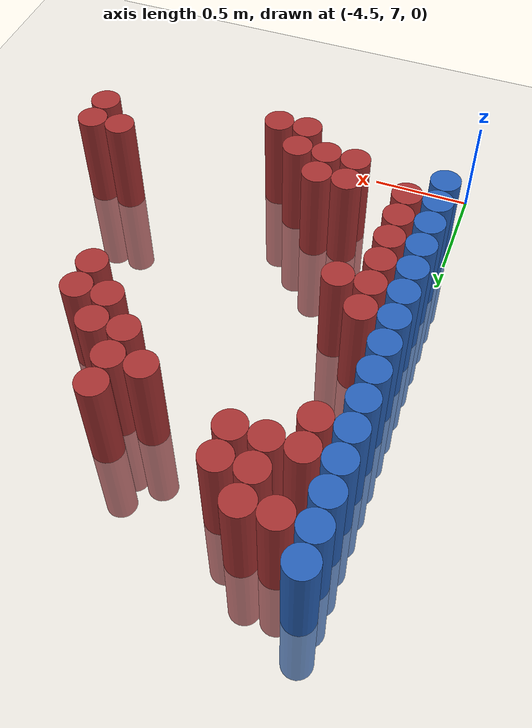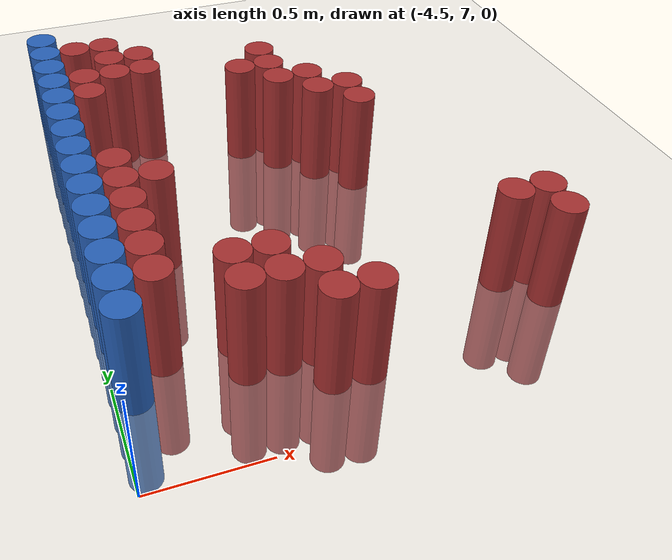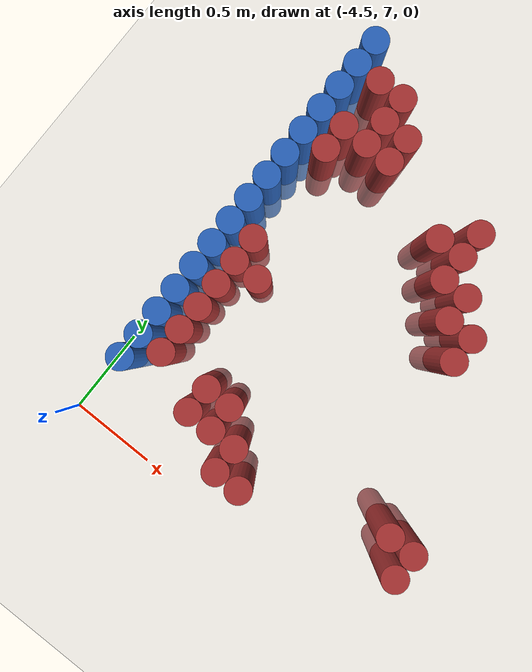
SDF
<sdf version="1.6">
 <world name="default">
  <model name="ground_plane">
   <static>1</static>
   <link name="link">
    <collision name="collision">
     <geometry><plane><normal>0 0 1</normal><size>100 100</size></plane></geometry>
     <surface><friction><ode><mu>100</mu><mu2>50</mu2></ode></friction></surface>
    </collision>
    <visual name="visual">
     <cast_shadows>0</cast_shadows>
     <geometry><plane><normal>0 0 1</normal><size>100 100</size></plane></geometry>
     <material>
      <script><uri>file://media/materials/scripts/gazebo.material</uri><name>Gazebo/Grey</name></script>
     </material>
    </visual>
   </link>
  </model>
  <model name="unit_cylinder_111">
   <static>1</static>
   <pose>-4.425000 7.425000 0.000000 0.000000 0.000000 0.000000</pose>
   <link name="link">
    <inertial>
     <mass>1</mass>
     <inertia><ixx>0.145833</ixx><ixy>0</ixy><ixz>0</ixz><iyy>0.145833</iyy><iyz>0</iyz><izz>0.125</izz></inertia>
    </inertial>
    <collision name="collision">
     <geometry><cylinder><radius>0.075000</radius><length>1</length></cylinder></geometry>
    </collision>
    <visual name="visual">
     <geometry><cylinder><radius>0.075000</radius><length>1</length></cylinder></geometry>
     <material>
      <ambient>0.152000 0.379000 0.720000 1</ambient>
      <diffuse>0.152000 0.379000 0.720000 1</diffuse>
     </material>
     <material>
      <script><name>Gazebo/Grey</name><uri>file://media/materials/scripts/gazebo.material</uri></script>
     </material>
    </visual>
   </link>
  </model>
  <model name="unit_cylinder_112">
   <static>1</static>
   <pose>-4.425000 7.575000 0.000000 0.000000 0.000000 0.000000</pose>
   <link name="link">
    <inertial>
     <mass>1</mass>
     <inertia><ixx>0.145833</ixx><ixy>0</ixy><ixz>0</ixz><iyy>0.145833</iyy><iyz>0</iyz><izz>0.125</izz></inertia>
    </inertial>
    <collision name="collision">
     <geometry><cylinder><radius>0.075000</radius><length>1</length></cylinder></geometry>
    </collision>
    <visual name="visual">
     <geometry><cylinder><radius>0.075000</radius><length>1</length></cylinder></geometry>
     <material>
      <ambient>0.152000 0.379000 0.720000 1</ambient>
      <diffuse>0.152000 0.379000 0.720000 1</diffuse>
     </material>
     <material>
      <script><name>Gazebo/Grey</name><uri>file://media/materials/scripts/gazebo.material</uri></script>
     </material>
    </visual>
   </link>
  </model>
  <model name="unit_cylinder_113">
   <static>1</static>
   <pose>-4.425000 7.725000 0.000000 0.000000 0.000000 0.000000</pose>
   <link name="link">
    <inertial>
     <mass>1</mass>
     <inertia><ixx>0.145833</ixx><ixy>0</ixy><ixz>0</ixz><iyy>0.145833</iyy><iyz>0</iyz><izz>0.125</izz></inertia>
    </inertial>
    <collision name="collision">
     <geometry><cylinder><radius>0.075000</radius><length>1</length></cylinder></geometry>
    </collision>
    <visual name="visual">
     <geometry><cylinder><radius>0.075000</radius><length>1</length></cylinder></geometry>
     <material>
      <ambient>0.152000 0.379000 0.720000 1</ambient>
      <diffuse>0.152000 0.379000 0.720000 1</diffuse>
     </material>
     <material>
      <script><name>Gazebo/Grey</name><uri>file://media/materials/scripts/gazebo.material</uri></script>
     </material>
    </visual>
   </link>
  </model>
  <model name="unit_cylinder_114">
   <static>1</static>
   <pose>-4.425000 7.875000 0.000000 0.000000 0.000000 0.000000</pose>
   <link name="link">
    <inertial>
     <mass>1</mass>
     <inertia><ixx>0.145833</ixx><ixy>0</ixy><ixz>0</ixz><iyy>0.145833</iyy><iyz>0</iyz><izz>0.125</izz></inertia>
    </inertial>
    <collision name="collision">
     <geometry><cylinder><radius>0.075000</radius><length>1</length></cylinder></geometry>
    </collision>
    <visual name="visual">
     <geometry><cylinder><radius>0.075000</radius><length>1</length></cylinder></geometry>
     <material>
      <ambient>0.152000 0.379000 0.720000 1</ambient>
      <diffuse>0.152000 0.379000 0.720000 1</diffuse>
     </material>
     <material>
      <script><name>Gazebo/Grey</name><uri>file://media/materials/scripts/gazebo.material</uri></script>
     </material>
    </visual>
   </link>
  </model>
  <model name="unit_cylinder_115">
   <static>1</static>
   <pose>-4.425000 8.025000 0.000000 0.000000 0.000000 0.000000</pose>
   <link name="link">
    <inertial>
     <mass>1</mass>
     <inertia><ixx>0.145833</ixx><ixy>0</ixy><ixz>0</ixz><iyy>0.145833</iyy><iyz>0</iyz><izz>0.125</izz></inertia>
    </inertial>
    <collision name="collision">
     <geometry><cylinder><radius>0.075000</radius><length>1</length></cylinder></geometry>
    </collision>
    <visual name="visual">
     <geometry><cylinder><radius>0.075000</radius><length>1</length></cylinder></geometry>
     <material>
      <ambient>0.152000 0.379000 0.720000 1</ambient>
      <diffuse>0.152000 0.379000 0.720000 1</diffuse>
     </material>
     <material>
      <script><name>Gazebo/Grey</name><uri>file://media/materials/scripts/gazebo.material</uri></script>
     </material>
    </visual>
   </link>
  </model>
  <model name="unit_cylinder_116">
   <static>1</static>
   <pose>-4.425000 8.175000 0.000000 0.000000 0.000000 0.000000</pose>
   <link name="link">
    <inertial>
     <mass>1</mass>
     <inertia><ixx>0.145833</ixx><ixy>0</ixy><ixz>0</ixz><iyy>0.145833</iyy><iyz>0</iyz><izz>0.125</izz></inertia>
    </inertial>
    <collision name="collision">
     <geometry><cylinder><radius>0.075000</radius><length>1</length></cylinder></geometry>
    </collision>
    <visual name="visual">
     <geometry><cylinder><radius>0.075000</radius><length>1</length></cylinder></geometry>
     <material>
      <ambient>0.152000 0.379000 0.720000 1</ambient>
      <diffuse>0.152000 0.379000 0.720000 1</diffuse>
     </material>
     <material>
      <script><name>Gazebo/Grey</name><uri>file://media/materials/scripts/gazebo.material</uri></script>
     </material>
    </visual>
   </link>
  </model>
  <model name="unit_cylinder_117">
   <static>1</static>
   <pose>-4.425000 8.325000 0.000000 0.000000 0.000000 0.000000</pose>
   <link name="link">
    <inertial>
     <mass>1</mass>
     <inertia><ixx>0.145833</ixx><ixy>0</ixy><ixz>0</ixz><iyy>0.145833</iyy><iyz>0</iyz><izz>0.125</izz></inertia>
    </inertial>
    <collision name="collision">
     <geometry><cylinder><radius>0.075000</radius><length>1</length></cylinder></geometry>
    </collision>
    <visual name="visual">
     <geometry><cylinder><radius>0.075000</radius><length>1</length></cylinder></geometry>
     <material>
      <ambient>0.152000 0.379000 0.720000 1</ambient>
      <diffuse>0.152000 0.379000 0.720000 1</diffuse>
     </material>
     <material>
      <script><name>Gazebo/Grey</name><uri>file://media/materials/scripts/gazebo.material</uri></script>
     </material>
    </visual>
   </link>
  </model>
  <model name="unit_cylinder_118">
   <static>1</static>
   <pose>-4.425000 8.475000 0.000000 0.000000 0.000000 0.000000</pose>
   <link name="link">
    <inertial>
     <mass>1</mass>
     <inertia><ixx>0.145833</ixx><ixy>0</ixy><ixz>0</ixz><iyy>0.145833</iyy><iyz>0</iyz><izz>0.125</izz></inertia>
    </inertial>
    <collision name="collision">
     <geometry><cylinder><radius>0.075000</radius><length>1</length></cylinder></geometry>
    </collision>
    <visual name="visual">
     <geometry><cylinder><radius>0.075000</radius><length>1</length></cylinder></geometry>
     <material>
      <ambient>0.152000 0.379000 0.720000 1</ambient>
      <diffuse>0.152000 0.379000 0.720000 1</diffuse>
     </material>
     <material>
      <script><name>Gazebo/Grey</name><uri>file://media/materials/scripts/gazebo.material</uri></script>
     </material>
    </visual>
   </link>
  </model>
  <model name="unit_cylinder_119">
   <static>1</static>
   <pose>-4.425000 8.625000 0.000000 0.000000 0.000000 0.000000</pose>
   <link name="link">
    <inertial>
     <mass>1</mass>
     <inertia><ixx>0.145833</ixx><ixy>0</ixy><ixz>0</ixz><iyy>0.145833</iyy><iyz>0</iyz><izz>0.125</izz></inertia>
    </inertial>
    <collision name="collision">
     <geometry><cylinder><radius>0.075000</radius><length>1</length></cylinder></geometry>
    </collision>
    <visual name="visual">
     <geometry><cylinder><radius>0.075000</radius><length>1</length></cylinder></geometry>
     <material>
      <ambient>0.152000 0.379000 0.720000 1</ambient>
      <diffuse>0.152000 0.379000 0.720000 1</diffuse>
     </material>
     <material>
      <script><name>Gazebo/Grey</name><uri>file://media/materials/scripts/gazebo.material</uri></script>
     </material>
    </visual>
   </link>
  </model>
  <model name="unit_cylinder_120">
   <static>1</static>
   <pose>-4.425000 8.775000 0.000000 0.000000 0.000000 0.000000</pose>
   <link name="link">
    <inertial>
     <mass>1</mass>
     <inertia><ixx>0.145833</ixx><ixy>0</ixy><ixz>0</ixz><iyy>0.145833</iyy><iyz>0</iyz><izz>0.125</izz></inertia>
    </inertial>
    <collision name="collision">
     <geometry><cylinder><radius>0.075000</radius><length>1</length></cylinder></geometry>
    </collision>
    <visual name="visual">
     <geometry><cylinder><radius>0.075000</radius><length>1</length></cylinder></geometry>
     <material>
      <ambient>0.152000 0.379000 0.720000 1</ambient>
      <diffuse>0.152000 0.379000 0.720000 1</diffuse>
     </material>
     <material>
      <script><name>Gazebo/Grey</name><uri>file://media/materials/scripts/gazebo.material</uri></script>
     </material>
    </visual>
   </link>
  </model>
  <model name="unit_cylinder_121">
   <static>1</static>
   <pose>-4.425000 8.925000 0.000000 0.000000 0.000000 0.000000</pose>
   <link name="link">
    <inertial>
     <mass>1</mass>
     <inertia><ixx>0.145833</ixx><ixy>0</ixy><ixz>0</ixz><iyy>0.145833</iyy><iyz>0</iyz><izz>0.125</izz></inertia>
    </inertial>
    <collision name="collision">
     <geometry><cylinder><radius>0.075000</radius><length>1</length></cylinder></geometry>
    </collision>
    <visual name="visual">
     <geometry><cylinder><radius>0.075000</radius><length>1</length></cylinder></geometry>
     <material>
      <ambient>0.152000 0.379000 0.720000 1</ambient>
      <diffuse>0.152000 0.379000 0.720000 1</diffuse>
     </material>
     <material>
      <script><name>Gazebo/Grey</name><uri>file://media/materials/scripts/gazebo.material</uri></script>
     </material>
    </visual>
   </link>
  </model>
  <model name="unit_cylinder_122">
   <static>1</static>
   <pose>-4.425000 9.075000 0.000000 0.000000 0.000000 0.000000</pose>
   <link name="link">
    <inertial>
     <mass>1</mass>
     <inertia><ixx>0.145833</ixx><ixy>0</ixy><ixz>0</ixz><iyy>0.145833</iyy><iyz>0</iyz><izz>0.125</izz></inertia>
    </inertial>
    <collision name="collision">
     <geometry><cylinder><radius>0.075000</radius><length>1</length></cylinder></geometry>
    </collision>
    <visual name="visual">
     <geometry><cylinder><radius>0.075000</radius><length>1</length></cylinder></geometry>
     <material>
      <ambient>0.152000 0.379000 0.720000 1</ambient>
      <diffuse>0.152000 0.379000 0.720000 1</diffuse>
     </material>
     <material>
      <script><name>Gazebo/Grey</name><uri>file://media/materials/scripts/gazebo.material</uri></script>
     </material>
    </visual>
   </link>
  </model>
  <model name="unit_cylinder_123">
   <static>1</static>
   <pose>-4.425000 9.225000 0.000000 0.000000 0.000000 0.000000</pose>
   <link name="link">
    <inertial>
     <mass>1</mass>
     <inertia><ixx>0.145833</ixx><ixy>0</ixy><ixz>0</ixz><iyy>0.145833</iyy><iyz>0</iyz><izz>0.125</izz></inertia>
    </inertial>
    <collision name="collision">
     <geometry><cylinder><radius>0.075000</radius><length>1</length></cylinder></geometry>
    </collision>
    <visual name="visual">
     <geometry><cylinder><radius>0.075000</radius><length>1</length></cylinder></geometry>
     <material>
      <ambient>0.152000 0.379000 0.720000 1</ambient>
      <diffuse>0.152000 0.379000 0.720000 1</diffuse>
     </material>
     <material>
      <script><name>Gazebo/Grey</name><uri>file://media/materials/scripts/gazebo.material</uri></script>
     </material>
    </visual>
   </link>
  </model>
  <model name="unit_cylinder_124">
   <static>1</static>
   <pose>-4.425000 9.375000 0.000000 0.000000 0.000000 0.000000</pose>
   <link name="link">
    <inertial>
     <mass>1</mass>
     <inertia><ixx>0.145833</ixx><ixy>0</ixy><ixz>0</ixz><iyy>0.145833</iyy><iyz>0</iyz><izz>0.125</izz></inertia>
    </inertial>
    <collision name="collision">
     <geometry><cylinder><radius>0.075000</radius><length>1</length></cylinder></geometry>
    </collision>
    <visual name="visual">
     <geometry><cylinder><radius>0.075000</radius><length>1</length></cylinder></geometry>
     <material>
      <ambient>0.152000 0.379000 0.720000 1</ambient>
      <diffuse>0.152000 0.379000 0.720000 1</diffuse>
     </material>
     <material>
      <script><name>Gazebo/Grey</name><uri>file://media/materials/scripts/gazebo.material</uri></script>
     </material>
    </visual>
   </link>
  </model>
  <model name="unit_cylinder_125">
   <static>1</static>
   <pose>-4.425000 9.525000 0.000000 0.000000 0.000000 0.000000</pose>
   <link name="link">
    <inertial>
     <mass>1</mass>
     <inertia><ixx>0.145833</ixx><ixy>0</ixy><ixz>0</ixz><iyy>0.145833</iyy><iyz>0</iyz><izz>0.125</izz></inertia>
    </inertial>
    <collision name="collision">
     <geometry><cylinder><radius>0.075000</radius><length>1</length></cylinder></geometry>
    </collision>
    <visual name="visual">
     <geometry><cylinder><radius>0.075000</radius><length>1</length></cylinder></geometry>
     <material>
      <ambient>0.152000 0.379000 0.720000 1</ambient>
      <diffuse>0.152000 0.379000 0.720000 1</diffuse>
     </material>
     <material>
      <script><name>Gazebo/Grey</name><uri>file://media/materials/scripts/gazebo.material</uri></script>
     </material>
    </visual>
   </link>
  </model>
  <model name="unit_cylinder_133">
   <static>1</static>
   <pose>-4.275000 7.575000 0.000000 0.000000 0.000000 0.000000</pose>
   <link name="link">
    <inertial>
     <mass>1</mass>
     <inertia><ixx>0.145833</ixx><ixy>0</ixy><ixz>0</ixz><iyy>0.145833</iyy><iyz>0</iyz><izz>0.125</izz></inertia>
    </inertial>
    <collision name="collision">
     <geometry><cylinder><radius>0.075000</radius><length>1</length></cylinder></geometry>
    </collision>
    <visual name="visual">
     <geometry><cylinder><radius>0.075000</radius><length>1</length></cylinder></geometry>
     <material>
      <ambient>0.648000 0.192000 0.192000 1</ambient>
      <diffuse>0.648000 0.192000 0.192000 1</diffuse>
     </material>
     <material>
      <script><name>Gazebo/Grey</name><uri>file://media/materials/scripts/gazebo.material</uri></script>
     </material>
    </visual>
   </link>
  </model>
  <model name="unit_cylinder_134">
   <static>1</static>
   <pose>-4.275000 7.725000 0.000000 0.000000 0.000000 0.000000</pose>
   <link name="link">
    <inertial>
     <mass>1</mass>
     <inertia><ixx>0.145833</ixx><ixy>0</ixy><ixz>0</ixz><iyy>0.145833</iyy><iyz>0</iyz><izz>0.125</izz></inertia>
    </inertial>
    <collision name="collision">
     <geometry><cylinder><radius>0.075000</radius><length>1</length></cylinder></geometry>
    </collision>
    <visual name="visual">
     <geometry><cylinder><radius>0.075000</radius><length>1</length></cylinder></geometry>
     <material>
      <ambient>0.648000 0.192000 0.192000 1</ambient>
      <diffuse>0.648000 0.192000 0.192000 1</diffuse>
     </material>
     <material>
      <script><name>Gazebo/Grey</name><uri>file://media/materials/scripts/gazebo.material</uri></script>
     </material>
    </visual>
   </link>
  </model>
  <model name="unit_cylinder_135">
   <static>1</static>
   <pose>-4.275000 7.875000 0.000000 0.000000 0.000000 0.000000</pose>
   <link name="link">
    <inertial>
     <mass>1</mass>
     <inertia><ixx>0.145833</ixx><ixy>0</ixy><ixz>0</ixz><iyy>0.145833</iyy><iyz>0</iyz><izz>0.125</izz></inertia>
    </inertial>
    <collision name="collision">
     <geometry><cylinder><radius>0.075000</radius><length>1</length></cylinder></geometry>
    </collision>
    <visual name="visual">
     <geometry><cylinder><radius>0.075000</radius><length>1</length></cylinder></geometry>
     <material>
      <ambient>0.648000 0.192000 0.192000 1</ambient>
      <diffuse>0.648000 0.192000 0.192000 1</diffuse>
     </material>
     <material>
      <script><name>Gazebo/Grey</name><uri>file://media/materials/scripts/gazebo.material</uri></script>
     </material>
    </visual>
   </link>
  </model>
  <model name="unit_cylinder_136">
   <static>1</static>
   <pose>-4.275000 8.025000 0.000000 0.000000 0.000000 0.000000</pose>
   <link name="link">
    <inertial>
     <mass>1</mass>
     <inertia><ixx>0.145833</ixx><ixy>0</ixy><ixz>0</ixz><iyy>0.145833</iyy><iyz>0</iyz><izz>0.125</izz></inertia>
    </inertial>
    <collision name="collision">
     <geometry><cylinder><radius>0.075000</radius><length>1</length></cylinder></geometry>
    </collision>
    <visual name="visual">
     <geometry><cylinder><radius>0.075000</radius><length>1</length></cylinder></geometry>
     <material>
      <ambient>0.648000 0.192000 0.192000 1</ambient>
      <diffuse>0.648000 0.192000 0.192000 1</diffuse>
     </material>
     <material>
      <script><name>Gazebo/Grey</name><uri>file://media/materials/scripts/gazebo.material</uri></script>
     </material>
    </visual>
   </link>
  </model>
  <model name="unit_cylinder_137">
   <static>1</static>
   <pose>-4.275000 8.175000 0.000000 0.000000 0.000000 0.000000</pose>
   <link name="link">
    <inertial>
     <mass>1</mass>
     <inertia><ixx>0.145833</ixx><ixy>0</ixy><ixz>0</ixz><iyy>0.145833</iyy><iyz>0</iyz><izz>0.125</izz></inertia>
    </inertial>
    <collision name="collision">
     <geometry><cylinder><radius>0.075000</radius><length>1</length></cylinder></geometry>
    </collision>
    <visual name="visual">
     <geometry><cylinder><radius>0.075000</radius><length>1</length></cylinder></geometry>
     <material>
      <ambient>0.648000 0.192000 0.192000 1</ambient>
      <diffuse>0.648000 0.192000 0.192000 1</diffuse>
     </material>
     <material>
      <script><name>Gazebo/Grey</name><uri>file://media/materials/scripts/gazebo.material</uri></script>
     </material>
    </visual>
   </link>
  </model>
  <model name="unit_cylinder_138">
   <static>1</static>
   <pose>-4.275000 8.325000 0.000000 0.000000 0.000000 0.000000</pose>
   <link name="link">
    <inertial>
     <mass>1</mass>
     <inertia><ixx>0.145833</ixx><ixy>0</ixy><ixz>0</ixz><iyy>0.145833</iyy><iyz>0</iyz><izz>0.125</izz></inertia>
    </inertial>
    <collision name="collision">
     <geometry><cylinder><radius>0.075000</radius><length>1</length></cylinder></geometry>
    </collision>
    <visual name="visual">
     <geometry><cylinder><radius>0.075000</radius><length>1</length></cylinder></geometry>
     <material>
      <ambient>0.648000 0.192000 0.192000 1</ambient>
      <diffuse>0.648000 0.192000 0.192000 1</diffuse>
     </material>
     <material>
      <script><name>Gazebo/Grey</name><uri>file://media/materials/scripts/gazebo.material</uri></script>
     </material>
    </visual>
   </link>
  </model>
  <model name="unit_cylinder_139">
   <static>1</static>
   <pose>-4.275000 8.925000 0.000000 0.000000 0.000000 0.000000</pose>
   <link name="link">
    <inertial>
     <mass>1</mass>
     <inertia><ixx>0.145833</ixx><ixy>0</ixy><ixz>0</ixz><iyy>0.145833</iyy><iyz>0</iyz><izz>0.125</izz></inertia>
    </inertial>
    <collision name="collision">
     <geometry><cylinder><radius>0.075000</radius><length>1</length></cylinder></geometry>
    </collision>
    <visual name="visual">
     <geometry><cylinder><radius>0.075000</radius><length>1</length></cylinder></geometry>
     <material>
      <ambient>0.648000 0.192000 0.192000 1</ambient>
      <diffuse>0.648000 0.192000 0.192000 1</diffuse>
     </material>
     <material>
      <script><name>Gazebo/Grey</name><uri>file://media/materials/scripts/gazebo.material</uri></script>
     </material>
    </visual>
   </link>
  </model>
  <model name="unit_cylinder_140">
   <static>1</static>
   <pose>-4.275000 9.075000 0.000000 0.000000 0.000000 0.000000</pose>
   <link name="link">
    <inertial>
     <mass>1</mass>
     <inertia><ixx>0.145833</ixx><ixy>0</ixy><ixz>0</ixz><iyy>0.145833</iyy><iyz>0</iyz><izz>0.125</izz></inertia>
    </inertial>
    <collision name="collision">
     <geometry><cylinder><radius>0.075000</radius><length>1</length></cylinder></geometry>
    </collision>
    <visual name="visual">
     <geometry><cylinder><radius>0.075000</radius><length>1</length></cylinder></geometry>
     <material>
      <ambient>0.648000 0.192000 0.192000 1</ambient>
      <diffuse>0.648000 0.192000 0.192000 1</diffuse>
     </material>
     <material>
      <script><name>Gazebo/Grey</name><uri>file://media/materials/scripts/gazebo.material</uri></script>
     </material>
    </visual>
   </link>
  </model>
  <model name="unit_cylinder_141">
   <static>1</static>
   <pose>-4.275000 9.375000 0.000000 0.000000 0.000000 0.000000</pose>
   <link name="link">
    <inertial>
     <mass>1</mass>
     <inertia><ixx>0.145833</ixx><ixy>0</ixy><ixz>0</ixz><iyy>0.145833</iyy><iyz>0</iyz><izz>0.125</izz></inertia>
    </inertial>
    <collision name="collision">
     <geometry><cylinder><radius>0.075000</radius><length>1</length></cylinder></geometry>
    </collision>
    <visual name="visual">
     <geometry><cylinder><radius>0.075000</radius><length>1</length></cylinder></geometry>
     <material>
      <ambient>0.648000 0.192000 0.192000 1</ambient>
      <diffuse>0.648000 0.192000 0.192000 1</diffuse>
     </material>
     <material>
      <script><name>Gazebo/Grey</name><uri>file://media/materials/scripts/gazebo.material</uri></script>
     </material>
    </visual>
   </link>
  </model>
  <model name="unit_cylinder_145">
   <static>1</static>
   <pose>-4.125000 8.175000 0.000000 0.000000 0.000000 0.000000</pose>
   <link name="link">
    <inertial>
     <mass>1</mass>
     <inertia><ixx>0.145833</ixx><ixy>0</ixy><ixz>0</ixz><iyy>0.145833</iyy><iyz>0</iyz><izz>0.125</izz></inertia>
    </inertial>
    <collision name="collision">
     <geometry><cylinder><radius>0.075000</radius><length>1</length></cylinder></geometry>
    </collision>
    <visual name="visual">
     <geometry><cylinder><radius>0.075000</radius><length>1</length></cylinder></geometry>
     <material>
      <ambient>0.648000 0.192000 0.192000 1</ambient>
      <diffuse>0.648000 0.192000 0.192000 1</diffuse>
     </material>
     <material>
      <script><name>Gazebo/Grey</name><uri>file://media/materials/scripts/gazebo.material</uri></script>
     </material>
    </visual>
   </link>
  </model>
  <model name="unit_cylinder_146">
   <static>1</static>
   <pose>-4.125000 9.075000 0.000000 0.000000 0.000000 0.000000</pose>
   <link name="link">
    <inertial>
     <mass>1</mass>
     <inertia><ixx>0.145833</ixx><ixy>0</ixy><ixz>0</ixz><iyy>0.145833</iyy><iyz>0</iyz><izz>0.125</izz></inertia>
    </inertial>
    <collision name="collision">
     <geometry><cylinder><radius>0.075000</radius><length>1</length></cylinder></geometry>
    </collision>
    <visual name="visual">
     <geometry><cylinder><radius>0.075000</radius><length>1</length></cylinder></geometry>
     <material>
      <ambient>0.648000 0.192000 0.192000 1</ambient>
      <diffuse>0.648000 0.192000 0.192000 1</diffuse>
     </material>
     <material>
      <script><name>Gazebo/Grey</name><uri>file://media/materials/scripts/gazebo.material</uri></script>
     </material>
    </visual>
   </link>
  </model>
  <model name="unit_cylinder_147">
   <static>1</static>
   <pose>-4.125000 9.225000 0.000000 0.000000 0.000000 0.000000</pose>
   <link name="link">
    <inertial>
     <mass>1</mass>
     <inertia><ixx>0.145833</ixx><ixy>0</ixy><ixz>0</ixz><iyy>0.145833</iyy><iyz>0</iyz><izz>0.125</izz></inertia>
    </inertial>
    <collision name="collision">
     <geometry><cylinder><radius>0.075000</radius><length>1</length></cylinder></geometry>
    </collision>
    <visual name="visual">
     <geometry><cylinder><radius>0.075000</radius><length>1</length></cylinder></geometry>
     <material>
      <ambient>0.648000 0.192000 0.192000 1</ambient>
      <diffuse>0.648000 0.192000 0.192000 1</diffuse>
     </material>
     <material>
      <script><name>Gazebo/Grey</name><uri>file://media/materials/scripts/gazebo.material</uri></script>
     </material>
    </visual>
   </link>
  </model>
  <model name="unit_cylinder_148">
   <static>1</static>
   <pose>-4.125000 9.375000 0.000000 0.000000 0.000000 0.000000</pose>
   <link name="link">
    <inertial>
     <mass>1</mass>
     <inertia><ixx>0.145833</ixx><ixy>0</ixy><ixz>0</ixz><iyy>0.145833</iyy><iyz>0</iyz><izz>0.125</izz></inertia>
    </inertial>
    <collision name="collision">
     <geometry><cylinder><radius>0.075000</radius><length>1</length></cylinder></geometry>
    </collision>
    <visual name="visual">
     <geometry><cylinder><radius>0.075000</radius><length>1</length></cylinder></geometry>
     <material>
      <ambient>0.648000 0.192000 0.192000 1</ambient>
      <diffuse>0.648000 0.192000 0.192000 1</diffuse>
     </material>
     <material>
      <script><name>Gazebo/Grey</name><uri>file://media/materials/scripts/gazebo.material</uri></script>
     </material>
    </visual>
   </link>
  </model>
  <model name="unit_cylinder_152">
   <static>1</static>
   <pose>-3.975000 7.425000 0.000000 0.000000 0.000000 0.000000</pose>
   <link name="link">
    <inertial>
     <mass>1</mass>
     <inertia><ixx>0.145833</ixx><ixy>0</ixy><ixz>0</ixz><iyy>0.145833</iyy><iyz>0</iyz><izz>0.125</izz></inertia>
    </inertial>
    <collision name="collision">
     <geometry><cylinder><radius>0.075000</radius><length>1</length></cylinder></geometry>
    </collision>
    <visual name="visual">
     <geometry><cylinder><radius>0.075000</radius><length>1</length></cylinder></geometry>
     <material>
      <ambient>0.648000 0.192000 0.192000 1</ambient>
      <diffuse>0.648000 0.192000 0.192000 1</diffuse>
     </material>
     <material>
      <script><name>Gazebo/Grey</name><uri>file://media/materials/scripts/gazebo.material</uri></script>
     </material>
    </visual>
   </link>
  </model>
  <model name="unit_cylinder_153">
   <static>1</static>
   <pose>-3.975000 7.575000 0.000000 0.000000 0.000000 0.000000</pose>
   <link name="link">
    <inertial>
     <mass>1</mass>
     <inertia><ixx>0.145833</ixx><ixy>0</ixy><ixz>0</ixz><iyy>0.145833</iyy><iyz>0</iyz><izz>0.125</izz></inertia>
    </inertial>
    <collision name="collision">
     <geometry><cylinder><radius>0.075000</radius><length>1</length></cylinder></geometry>
    </collision>
    <visual name="visual">
     <geometry><cylinder><radius>0.075000</radius><length>1</length></cylinder></geometry>
     <material>
      <ambient>0.648000 0.192000 0.192000 1</ambient>
      <diffuse>0.648000 0.192000 0.192000 1</diffuse>
     </material>
     <material>
      <script><name>Gazebo/Grey</name><uri>file://media/materials/scripts/gazebo.material</uri></script>
     </material>
    </visual>
   </link>
  </model>
  <model name="unit_cylinder_154">
   <static>1</static>
   <pose>-3.975000 9.075000 0.000000 0.000000 0.000000 0.000000</pose>
   <link name="link">
    <inertial>
     <mass>1</mass>
     <inertia><ixx>0.145833</ixx><ixy>0</ixy><ixz>0</ixz><iyy>0.145833</iyy><iyz>0</iyz><izz>0.125</izz></inertia>
    </inertial>
    <collision name="collision">
     <geometry><cylinder><radius>0.075000</radius><length>1</length></cylinder></geometry>
    </collision>
    <visual name="visual">
     <geometry><cylinder><radius>0.075000</radius><length>1</length></cylinder></geometry>
     <material>
      <ambient>0.648000 0.192000 0.192000 1</ambient>
      <diffuse>0.648000 0.192000 0.192000 1</diffuse>
     </material>
     <material>
      <script><name>Gazebo/Grey</name><uri>file://media/materials/scripts/gazebo.material</uri></script>
     </material>
    </visual>
   </link>
  </model>
  <model name="unit_cylinder_155">
   <static>1</static>
   <pose>-3.975000 9.225000 0.000000 0.000000 0.000000 0.000000</pose>
   <link name="link">
    <inertial>
     <mass>1</mass>
     <inertia><ixx>0.145833</ixx><ixy>0</ixy><ixz>0</ixz><iyy>0.145833</iyy><iyz>0</iyz><izz>0.125</izz></inertia>
    </inertial>
    <collision name="collision">
     <geometry><cylinder><radius>0.075000</radius><length>1</length></cylinder></geometry>
    </collision>
    <visual name="visual">
     <geometry><cylinder><radius>0.075000</radius><length>1</length></cylinder></geometry>
     <material>
      <ambient>0.648000 0.192000 0.192000 1</ambient>
      <diffuse>0.648000 0.192000 0.192000 1</diffuse>
     </material>
     <material>
      <script><name>Gazebo/Grey</name><uri>file://media/materials/scripts/gazebo.material</uri></script>
     </material>
    </visual>
   </link>
  </model>
  <model name="unit_cylinder_165">
   <static>1</static>
   <pose>-3.825000 7.425000 0.000000 0.000000 0.000000 0.000000</pose>
   <link name="link">
    <inertial>
     <mass>1</mass>
     <inertia><ixx>0.145833</ixx><ixy>0</ixy><ixz>0</ixz><iyy>0.145833</iyy><iyz>0</iyz><izz>0.125</izz></inertia>
    </inertial>
    <collision name="collision">
     <geometry><cylinder><radius>0.075000</radius><length>1</length></cylinder></geometry>
    </collision>
    <visual name="visual">
     <geometry><cylinder><radius>0.075000</radius><length>1</length></cylinder></geometry>
     <material>
      <ambient>0.648000 0.192000 0.192000 1</ambient>
      <diffuse>0.648000 0.192000 0.192000 1</diffuse>
     </material>
     <material>
      <script><name>Gazebo/Grey</name><uri>file://media/materials/scripts/gazebo.material</uri></script>
     </material>
    </visual>
   </link>
  </model>
  <model name="unit_cylinder_166">
   <static>1</static>
   <pose>-3.825000 7.575000 0.000000 0.000000 0.000000 0.000000</pose>
   <link name="link">
    <inertial>
     <mass>1</mass>
     <inertia><ixx>0.145833</ixx><ixy>0</ixy><ixz>0</ixz><iyy>0.145833</iyy><iyz>0</iyz><izz>0.125</izz></inertia>
    </inertial>
    <collision name="collision">
     <geometry><cylinder><radius>0.075000</radius><length>1</length></cylinder></geometry>
    </collision>
    <visual name="visual">
     <geometry><cylinder><radius>0.075000</radius><length>1</length></cylinder></geometry>
     <material>
      <ambient>0.648000 0.192000 0.192000 1</ambient>
      <diffuse>0.648000 0.192000 0.192000 1</diffuse>
     </material>
     <material>
      <script><name>Gazebo/Grey</name><uri>file://media/materials/scripts/gazebo.material</uri></script>
     </material>
    </visual>
   </link>
  </model>
  <model name="unit_cylinder_175">
   <static>1</static>
   <pose>-3.675000 7.275000 0.000000 0.000000 0.000000 0.000000</pose>
   <link name="link">
    <inertial>
     <mass>1</mass>
     <inertia><ixx>0.145833</ixx><ixy>0</ixy><ixz>0</ixz><iyy>0.145833</iyy><iyz>0</iyz><izz>0.125</izz></inertia>
    </inertial>
    <collision name="collision">
     <geometry><cylinder><radius>0.075000</radius><length>1</length></cylinder></geometry>
    </collision>
    <visual name="visual">
     <geometry><cylinder><radius>0.075000</radius><length>1</length></cylinder></geometry>
     <material>
      <ambient>0.648000 0.192000 0.192000 1</ambient>
      <diffuse>0.648000 0.192000 0.192000 1</diffuse>
     </material>
     <material>
      <script><name>Gazebo/Grey</name><uri>file://media/materials/scripts/gazebo.material</uri></script>
     </material>
    </visual>
   </link>
  </model>
  <model name="unit_cylinder_176">
   <static>1</static>
   <pose>-3.675000 7.425000 0.000000 0.000000 0.000000 0.000000</pose>
   <link name="link">
    <inertial>
     <mass>1</mass>
     <inertia><ixx>0.145833</ixx><ixy>0</ixy><ixz>0</ixz><iyy>0.145833</iyy><iyz>0</iyz><izz>0.125</izz></inertia>
    </inertial>
    <collision name="collision">
     <geometry><cylinder><radius>0.075000</radius><length>1</length></cylinder></geometry>
    </collision>
    <visual name="visual">
     <geometry><cylinder><radius>0.075000</radius><length>1</length></cylinder></geometry>
     <material>
      <ambient>0.648000 0.192000 0.192000 1</ambient>
      <diffuse>0.648000 0.192000 0.192000 1</diffuse>
     </material>
     <material>
      <script><name>Gazebo/Grey</name><uri>file://media/materials/scripts/gazebo.material</uri></script>
     </material>
    </visual>
   </link>
  </model>
  <model name="unit_cylinder_181">
   <static>1</static>
   <pose>-3.525000 7.275000 0.000000 0.000000 0.000000 0.000000</pose>
   <link name="link">
    <inertial>
     <mass>1</mass>
     <inertia><ixx>0.145833</ixx><ixy>0</ixy><ixz>0</ixz><iyy>0.145833</iyy><iyz>0</iyz><izz>0.125</izz></inertia>
    </inertial>
    <collision name="collision">
     <geometry><cylinder><radius>0.075000</radius><length>1</length></cylinder></geometry>
    </collision>
    <visual name="visual">
     <geometry><cylinder><radius>0.075000</radius><length>1</length></cylinder></geometry>
     <material>
      <ambient>0.648000 0.192000 0.192000 1</ambient>
      <diffuse>0.648000 0.192000 0.192000 1</diffuse>
     </material>
     <material>
      <script><name>Gazebo/Grey</name><uri>file://media/materials/scripts/gazebo.material</uri></script>
     </material>
    </visual>
   </link>
  </model>
  <model name="unit_cylinder_182">
   <static>1</static>
   <pose>-3.525000 8.925000 0.000000 0.000000 0.000000 0.000000</pose>
   <link name="link">
    <inertial>
     <mass>1</mass>
     <inertia><ixx>0.145833</ixx><ixy>0</ixy><ixz>0</ixz><iyy>0.145833</iyy><iyz>0</iyz><izz>0.125</izz></inertia>
    </inertial>
    <collision name="collision">
     <geometry><cylinder><radius>0.075000</radius><length>1</length></cylinder></geometry>
    </collision>
    <visual name="visual">
     <geometry><cylinder><radius>0.075000</radius><length>1</length></cylinder></geometry>
     <material>
      <ambient>0.648000 0.192000 0.192000 1</ambient>
      <diffuse>0.648000 0.192000 0.192000 1</diffuse>
     </material>
     <material>
      <script><name>Gazebo/Grey</name><uri>file://media/materials/scripts/gazebo.material</uri></script>
     </material>
    </visual>
   </link>
  </model>
  <model name="unit_cylinder_186">
   <static>1</static>
   <pose>-3.375000 8.775000 0.000000 0.000000 0.000000 0.000000</pose>
   <link name="link">
    <inertial>
     <mass>1</mass>
     <inertia><ixx>0.145833</ixx><ixy>0</ixy><ixz>0</ixz><iyy>0.145833</iyy><iyz>0</iyz><izz>0.125</izz></inertia>
    </inertial>
    <collision name="collision">
     <geometry><cylinder><radius>0.075000</radius><length>1</length></cylinder></geometry>
    </collision>
    <visual name="visual">
     <geometry><cylinder><radius>0.075000</radius><length>1</length></cylinder></geometry>
     <material>
      <ambient>0.648000 0.192000 0.192000 1</ambient>
      <diffuse>0.648000 0.192000 0.192000 1</diffuse>
     </material>
     <material>
      <script><name>Gazebo/Grey</name><uri>file://media/materials/scripts/gazebo.material</uri></script>
     </material>
    </visual>
   </link>
  </model>
  <model name="unit_cylinder_187">
   <static>1</static>
   <pose>-3.375000 8.925000 0.000000 0.000000 0.000000 0.000000</pose>
   <link name="link">
    <inertial>
     <mass>1</mass>
     <inertia><ixx>0.145833</ixx><ixy>0</ixy><ixz>0</ixz><iyy>0.145833</iyy><iyz>0</iyz><izz>0.125</izz></inertia>
    </inertial>
    <collision name="collision">
     <geometry><cylinder><radius>0.075000</radius><length>1</length></cylinder></geometry>
    </collision>
    <visual name="visual">
     <geometry><cylinder><radius>0.075000</radius><length>1</length></cylinder></geometry>
     <material>
      <ambient>0.648000 0.192000 0.192000 1</ambient>
      <diffuse>0.648000 0.192000 0.192000 1</diffuse>
     </material>
     <material>
      <script><name>Gazebo/Grey</name><uri>file://media/materials/scripts/gazebo.material</uri></script>
     </material>
    </visual>
   </link>
  </model>
  <model name="unit_cylinder_188">
   <static>1</static>
   <pose>-3.375000 9.075000 0.000000 0.000000 0.000000 0.000000</pose>
   <link name="link">
    <inertial>
     <mass>1</mass>
     <inertia><ixx>0.145833</ixx><ixy>0</ixy><ixz>0</ixz><iyy>0.145833</iyy><iyz>0</iyz><izz>0.125</izz></inertia>
    </inertial>
    <collision name="collision">
     <geometry><cylinder><radius>0.075000</radius><length>1</length></cylinder></geometry>
    </collision>
    <visual name="visual">
     <geometry><cylinder><radius>0.075000</radius><length>1</length></cylinder></geometry>
     <material>
      <ambient>0.648000 0.192000 0.192000 1</ambient>
      <diffuse>0.648000 0.192000 0.192000 1</diffuse>
     </material>
     <material>
      <script><name>Gazebo/Grey</name><uri>file://media/materials/scripts/gazebo.material</uri></script>
     </material>
    </visual>
   </link>
  </model>
  <model name="unit_cylinder_193">
   <static>1</static>
   <pose>-3.225000 8.625000 0.000000 0.000000 0.000000 0.000000</pose>
   <link name="link">
    <inertial>
     <mass>1</mass>
     <inertia><ixx>0.145833</ixx><ixy>0</ixy><ixz>0</ixz><iyy>0.145833</iyy><iyz>0</iyz><izz>0.125</izz></inertia>
    </inertial>
    <collision name="collision">
     <geometry><cylinder><radius>0.075000</radius><length>1</length></cylinder></geometry>
    </collision>
    <visual name="visual">
     <geometry><cylinder><radius>0.075000</radius><length>1</length></cylinder></geometry>
     <material>
      <ambient>0.648000 0.192000 0.192000 1</ambient>
      <diffuse>0.648000 0.192000 0.192000 1</diffuse>
     </material>
     <material>
      <script><name>Gazebo/Grey</name><uri>file://media/materials/scripts/gazebo.material</uri></script>
     </material>
    </visual>
   </link>
  </model>
  <model name="unit_cylinder_194">
   <static>1</static>
   <pose>-3.225000 8.775000 0.000000 0.000000 0.000000 0.000000</pose>
   <link name="link">
    <inertial>
     <mass>1</mass>
     <inertia><ixx>0.145833</ixx><ixy>0</ixy><ixz>0</ixz><iyy>0.145833</iyy><iyz>0</iyz><izz>0.125</izz></inertia>
    </inertial>
    <collision name="collision">
     <geometry><cylinder><radius>0.075000</radius><length>1</length></cylinder></geometry>
    </collision>
    <visual name="visual">
     <geometry><cylinder><radius>0.075000</radius><length>1</length></cylinder></geometry>
     <material>
      <ambient>0.648000 0.192000 0.192000 1</ambient>
      <diffuse>0.648000 0.192000 0.192000 1</diffuse>
     </material>
     <material>
      <script><name>Gazebo/Grey</name><uri>file://media/materials/scripts/gazebo.material</uri></script>
     </material>
    </visual>
   </link>
  </model>
  <model name="unit_cylinder_200">
   <static>1</static>
   <pose>-3.075000 8.475000 0.000000 0.000000 0.000000 0.000000</pose>
   <link name="link">
    <inertial>
     <mass>1</mass>
     <inertia><ixx>0.145833</ixx><ixy>0</ixy><ixz>0</ixz><iyy>0.145833</iyy><iyz>0</iyz><izz>0.125</izz></inertia>
    </inertial>
    <collision name="collision">
     <geometry><cylinder><radius>0.075000</radius><length>1</length></cylinder></geometry>
    </collision>
    <visual name="visual">
     <geometry><cylinder><radius>0.075000</radius><length>1</length></cylinder></geometry>
     <material>
      <ambient>0.648000 0.192000 0.192000 1</ambient>
      <diffuse>0.648000 0.192000 0.192000 1</diffuse>
     </material>
     <material>
      <script><name>Gazebo/Grey</name><uri>file://media/materials/scripts/gazebo.material</uri></script>
     </material>
    </visual>
   </link>
  </model>
  <model name="unit_cylinder_201">
   <static>1</static>
   <pose>-3.075000 8.625000 0.000000 0.000000 0.000000 0.000000</pose>
   <link name="link">
    <inertial>
     <mass>1</mass>
     <inertia><ixx>0.145833</ixx><ixy>0</ixy><ixz>0</ixz><iyy>0.145833</iyy><iyz>0</iyz><izz>0.125</izz></inertia>
    </inertial>
    <collision name="collision">
     <geometry><cylinder><radius>0.075000</radius><length>1</length></cylinder></geometry>
    </collision>
    <visual name="visual">
     <geometry><cylinder><radius>0.075000</radius><length>1</length></cylinder></geometry>
     <material>
      <ambient>0.648000 0.192000 0.192000 1</ambient>
      <diffuse>0.648000 0.192000 0.192000 1</diffuse>
     </material>
     <material>
      <script><name>Gazebo/Grey</name><uri>file://media/materials/scripts/gazebo.material</uri></script>
     </material>
    </visual>
   </link>
  </model>
  <model name="unit_cylinder_212">
   <static>1</static>
   <pose>-2.775000 7.575000 0.000000 0.000000 0.000000 0.000000</pose>
   <link name="link">
    <inertial>
     <mass>1</mass>
     <inertia><ixx>0.145833</ixx><ixy>0</ixy><ixz>0</ixz><iyy>0.145833</iyy><iyz>0</iyz><izz>0.125</izz></inertia>
    </inertial>
    <collision name="collision">
     <geometry><cylinder><radius>0.075000</radius><length>1</length></cylinder></geometry>
    </collision>
    <visual name="visual">
     <geometry><cylinder><radius>0.075000</radius><length>1</length></cylinder></geometry>
     <material>
      <ambient>0.648000 0.192000 0.192000 1</ambient>
      <diffuse>0.648000 0.192000 0.192000 1</diffuse>
     </material>
     <material>
      <script><name>Gazebo/Grey</name><uri>file://media/materials/scripts/gazebo.material</uri></script>
     </material>
    </visual>
   </link>
  </model>
  <model name="unit_cylinder_216">
   <static>1</static>
   <pose>-2.625000 7.425000 0.000000 0.000000 0.000000 0.000000</pose>
   <link name="link">
    <inertial>
     <mass>1</mass>
     <inertia><ixx>0.145833</ixx><ixy>0</ixy><ixz>0</ixz><iyy>0.145833</iyy><iyz>0</iyz><izz>0.125</izz></inertia>
    </inertial>
    <collision name="collision">
     <geometry><cylinder><radius>0.075000</radius><length>1</length></cylinder></geometry>
    </collision>
    <visual name="visual">
     <geometry><cylinder><radius>0.075000</radius><length>1</length></cylinder></geometry>
     <material>
      <ambient>0.648000 0.192000 0.192000 1</ambient>
      <diffuse>0.648000 0.192000 0.192000 1</diffuse>
     </material>
     <material>
      <script><name>Gazebo/Grey</name><uri>file://media/materials/scripts/gazebo.material</uri></script>
     </material>
    </visual>
   </link>
  </model>
  <model name="unit_cylinder_217">
   <static>1</static>
   <pose>-2.625000 7.575000 0.000000 0.000000 0.000000 0.000000</pose>
   <link name="link">
    <inertial>
     <mass>1</mass>
     <inertia><ixx>0.145833</ixx><ixy>0</ixy><ixz>0</ixz><iyy>0.145833</iyy><iyz>0</iyz><izz>0.125</izz></inertia>
    </inertial>
    <collision name="collision">
     <geometry><cylinder><radius>0.075000</radius><length>1</length></cylinder></geometry>
    </collision>
    <visual name="visual">
     <geometry><cylinder><radius>0.075000</radius><length>1</length></cylinder></geometry>
     <material>
      <ambient>0.648000 0.192000 0.192000 1</ambient>
      <diffuse>0.648000 0.192000 0.192000 1</diffuse>
     </material>
     <material>
      <script><name>Gazebo/Grey</name><uri>file://media/materials/scripts/gazebo.material</uri></script>
     </material>
    </visual>
   </link>
  </model>
 </world>
</sdf>
